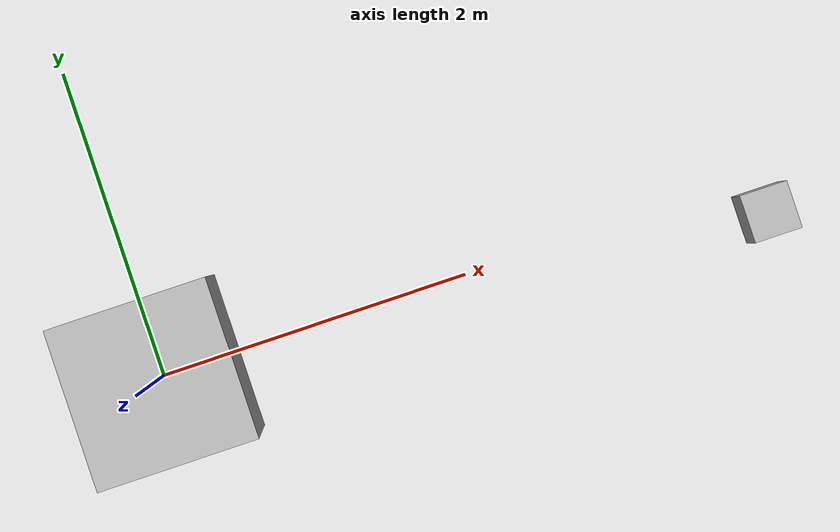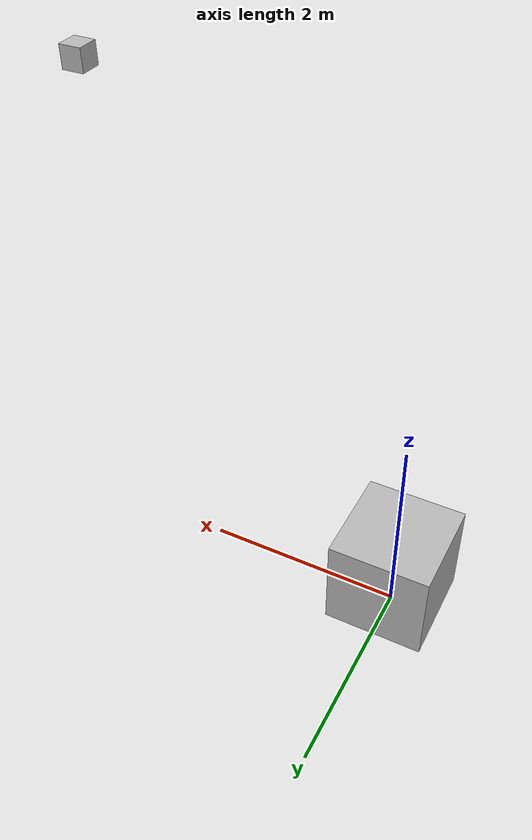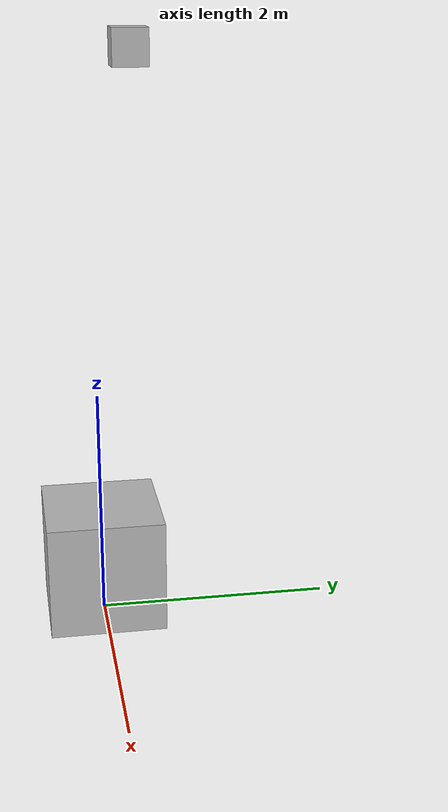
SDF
<?xml version="1.0"?>
<sdf version="1.9">
  <world name="link_attacher_test">
    <physics name="1ms" type="ignored">
      <max_step_size>0.001</max_step_size>
      <real_time_factor>0</real_time_factor>
    </physics>
    <plugin filename="gz-sim-physics-system" name="gz::sim::systems::Physics"></plugin>
    <plugin filename="gz-sim-scene-broadcaster-system" name="gz::sim::systems::SceneBroadcaster"></plugin>
    <plugin filename="LinkAttacher" name="gz_link_attacher_sim::LinkAttacher"></plugin>

    <model name="anchor">
      <static>true</static>
      <pose>0 0 0.5 0 0 0</pose>
      <link name="anchor_link">
        <collision name="c"><geometry><box><size>1 1 1</size></box></geometry></collision>
        <visual name="v"><geometry><box><size>1 1 1</size></box></geometry></visual>
      </link>
    </model>

    <model name="floater">
      <pose>3 0 5 0 0 0</pose>
      <link name="floater_link">
        <inertial><mass>1</mass></inertial>
        <collision name="c"><geometry><box><size>0.2 0.2 0.2</size></box></geometry></collision>
        <visual name="v"><geometry><box><size>0.2 0.2 0.2</size></box></geometry></visual>
      </link>
    </model>
  </world>
</sdf>
